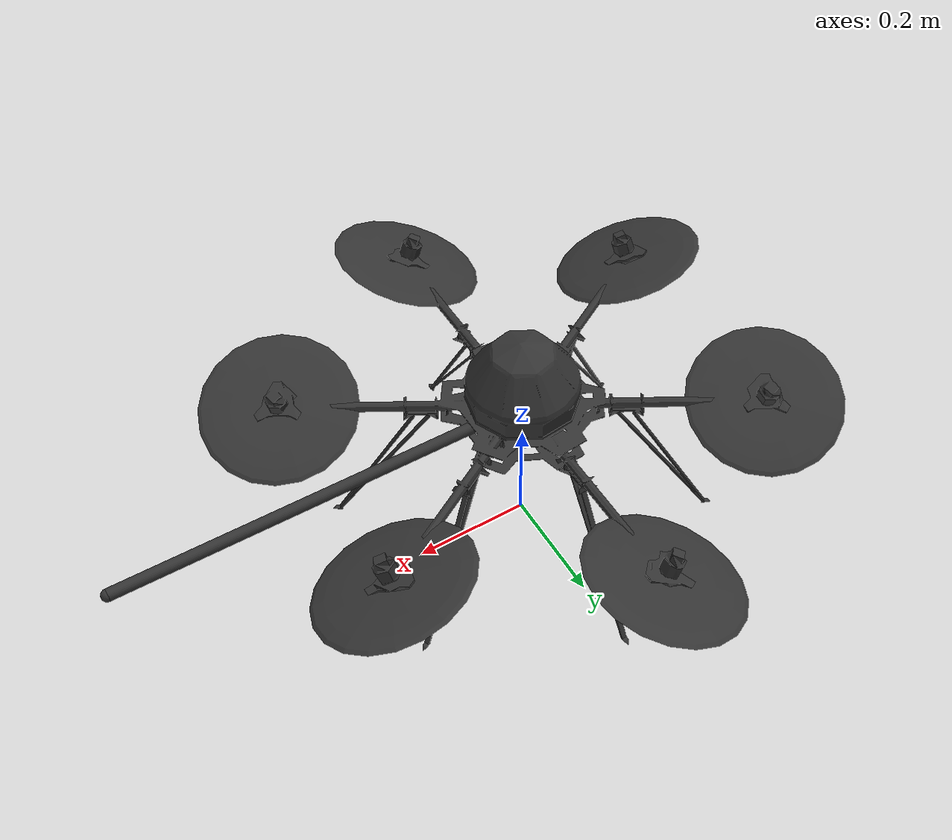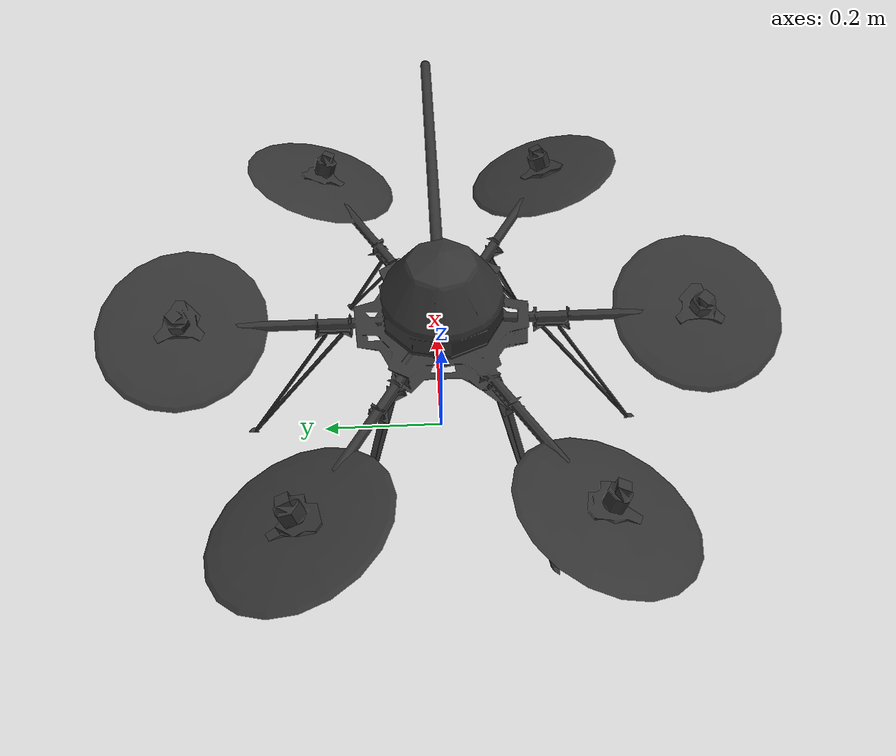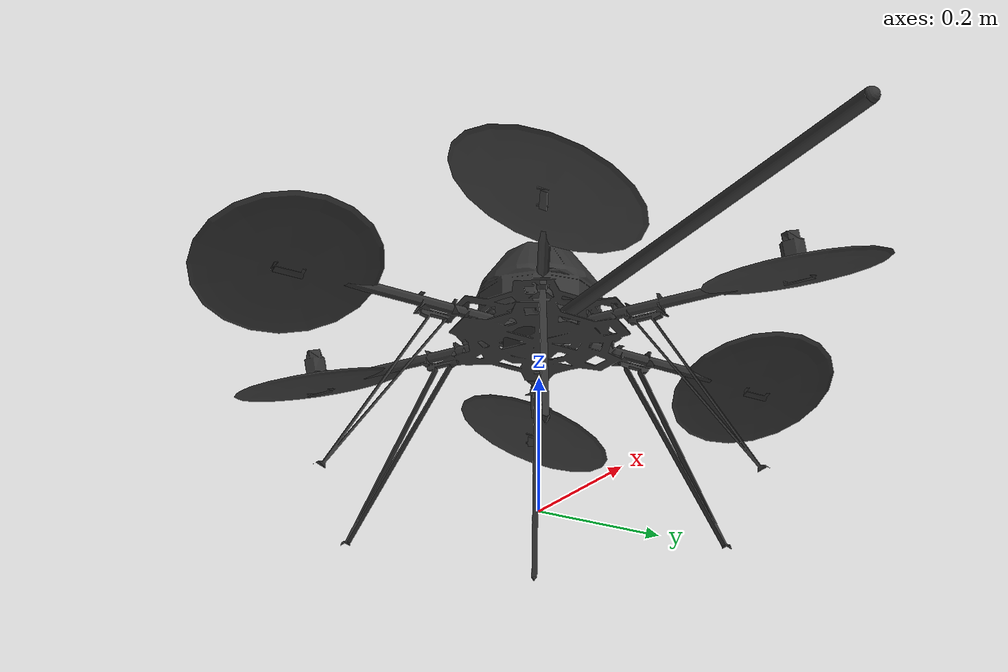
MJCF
<mujoco model="fiberthex">
    <compiler inertiafromgeom="false" angle="radian" eulerseq="XYZ" autolimits="true"/>
    <option gravity="0 0 -9.81" timestep="0.001" solver="Newton" cone="elliptic" impratio="10" tolerance="1e-10"/>

    <asset>
        <material name="grey" rgba="0.2 0.2 0.2 1"/>
        <material name="white" rgba="1 1 1 1"/>
        <material name="red" rgba="1 0 0 1"/>

        <material name="yellow" rgba="1 1 0 1"/>
        <material name="pink" rgba="1 0 0.6 1"/>
        <material name="purple" rgba="0.4 0 1 1"/>
        <material name="green" rgba="0 0.6 0.2 1"/>
        <material name="orange" rgba="1 0.4 0 1"/>
        <material name="blue" rgba="0 0 1 1"/>

        <mesh name="base" file="assets/base.obj" scale="0.001 0.001 0.001"/>

    </asset>

    <worldbody>
        <body name="robot" pos="0 0 0.27175" euler="0 0 0.523598776">
            <joint type="free"/>
            <inertial pos="0 0 0" mass="2" diaginertia="0.06185585085 0.46467853407 0.47162119244"/>
            <geom type="mesh" mesh="base" material="grey"/>
            <geom name="arm" type="cylinder" size="0.01 0.3475" pos="0.300943827 -0.17375 0.0" euler="-2.61799 1.5708 0" material = "grey"/>
            <geom name="End_Effector" type="sphere" size="0.01" pos="0.60188765563 -0.3475 0.0" euler="-2.61799 1.5708 0" material = "grey"/>
            <geom name="prop1" type="ellipsoid" size=".13 .13 .01" pos="0.38998 0 0" euler="0.34906585 0 0" material="grey"/>
            <geom name="prop2" type="ellipsoid" size=".13 .13 .01" pos="0.195 0.3377 0" euler="-0.34906585 0 1.0472" material="grey"/>
            <geom name="prop3" type="ellipsoid" size=".13 .13 .01" pos="-0.195 0.3377 0" euler="0.34906585 0 2.0944" material="grey"/>
            <geom name="prop4" type="ellipsoid" size=".13 .13 .01" pos="-0.38998 0 0" euler="0.34906585 0 0" material="grey"/>
            <geom name="prop5" type="ellipsoid" size=".13 .13 .01" pos="-0.195 -0.3377 0" euler="-0.34906585 0 1.0472" material="grey"/>
            <geom name="prop6" type="ellipsoid" size=".13 .13 .01" pos="0.195 -0.3377 0" euler="0.34906585 0 2.0944" material="grey"/>
            <site name="thrust1" pos="0.38998 0 0" euler="0.34906585 0 0"/>
            <site name="thrust2" pos="0.195 0.3377 0" euler="-0.34906585 0 1.0472"/>
            <site name="thrust3" pos="-0.195 0.3377 0" euler="0.34906585 0 2.0944"/>
            <site name="thrust4" pos="-0.38998 0 0" euler="0.34906585 0 0"/>
            <site name="thrust5" pos="-0.195 -0.3377 0" euler="-0.34906585 0 1.0472"/>
            <site name="thrust6" pos="0.195 -0.3377 0" euler="0.34906585 0 2.0944"/>
            <site name="CoM"/>
            <site name="End_Effector_Sensor" pos="0.60188765563 -0.3475 0.0" euler="0 0 -0.523598776"/>
            <camera name="parallel_cam" mode="targetbody" target='robot' pos="-1.5 -1.0 0.5" euler="0 0 0"/>
        </body>
    </worldbody>

    <actuator>

        <motor name="Force_X" site="CoM" ctrlrange="-30 30" gear="1 0 0 0 0 0" group="1"/>
        <motor name="Force_Y" site="CoM" ctrlrange="-30 30" gear="0 1 0 0 0 0" group="1"/>
        <motor name="Force_Z" site="CoM" ctrlrange="-30 30" gear="0 0 1 0 0 0" group="1"/>
        <motor name="Torque_X" site="CoM" ctrlrange="-30 30" gear="0 0 0 1 0 0" group="1"/>
        <motor name="Torque_Y" site="CoM" ctrlrange="-30 30" gear="0 0 0 0 1 0" group="1"/>
        <motor name="Torque_Z" site="CoM" ctrlrange="-30 30" gear="0 0 0 0 0 1" group="1"/>

    </actuator>

    <sensor>
        <!--robot parameters-->
        <!--Linear Parameters-->
        <framepos name="robot_pos" objtype="site" objname="CoM"/>
        <framelinvel name="robot_vel" objtype="site" objname="CoM"/>

        <!--Rotational Parameters-->
        <framequat name="robot_ori" objtype="site" objname="CoM"/>
        <gyro name="robot_Angvel" site='CoM'/>

        <!--End_Effector parameters-->
        <framepos name="EE_pos" objtype="site" objname="End_Effector_Sensor"/>

        <!--End_Effector Contact-->
        <!--Properller Contact-->

    </sensor>
</mujoco>
